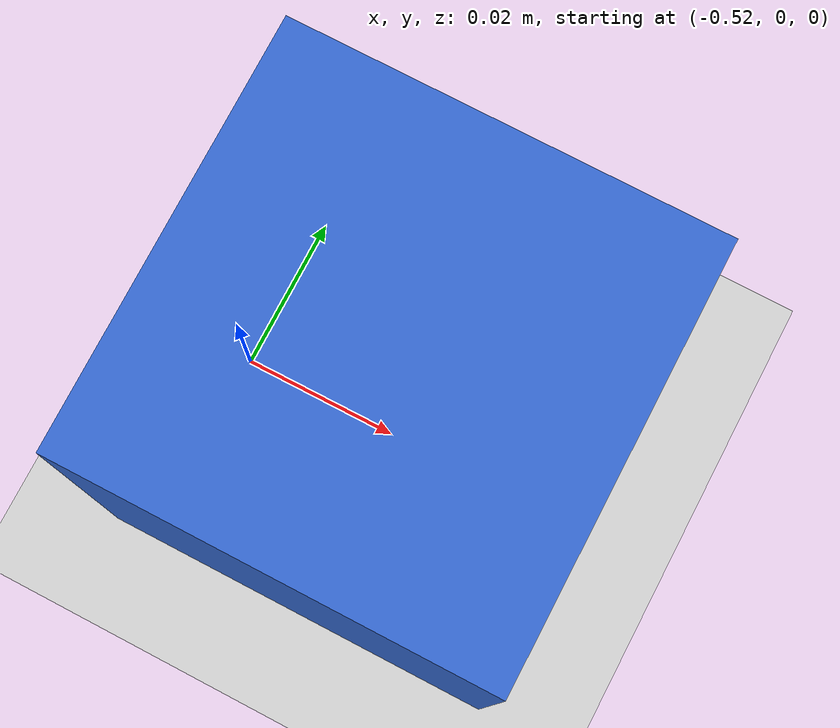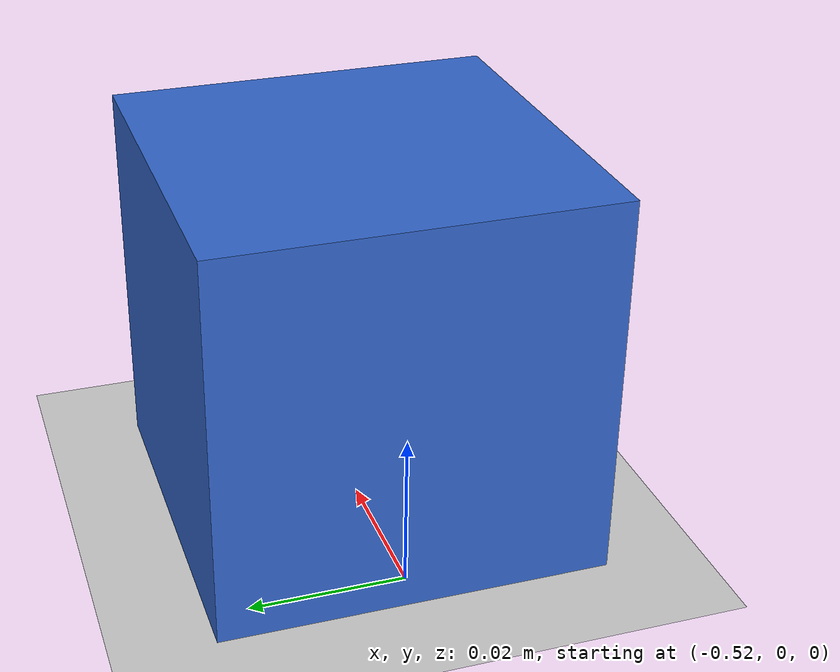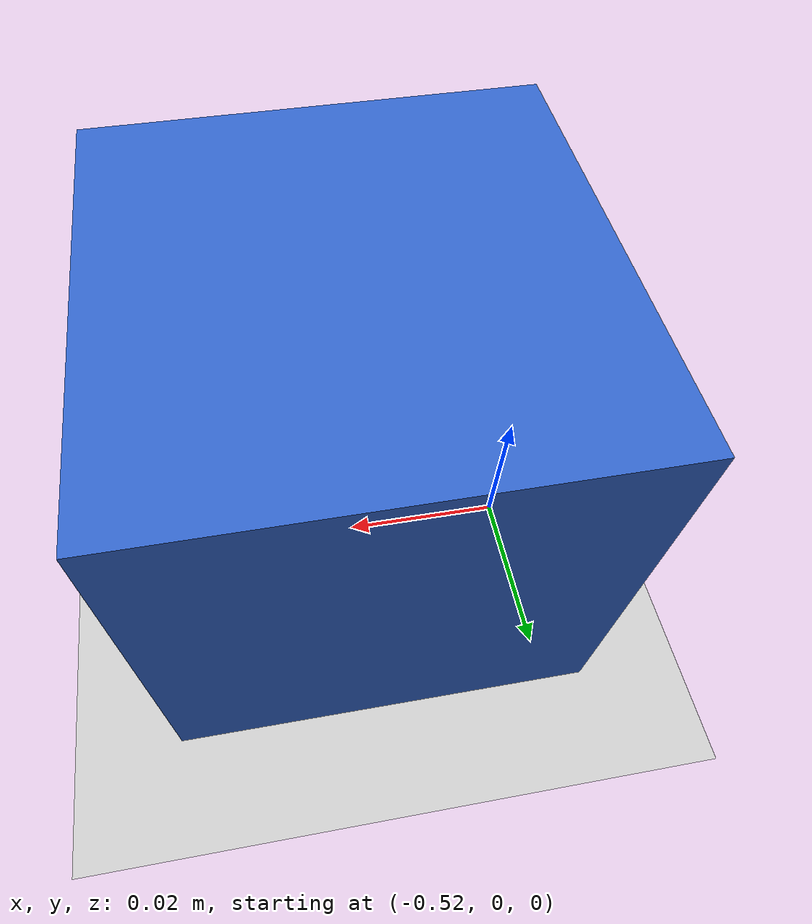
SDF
<?xml version="1.0" ?>
<sdf version="1.7">
  <world name="default">

    <model name="ground_plane">
      <static>1</static>
      <link name="link">
        <collision name="collision">
          <geometry>
            <plane>
              <normal>0 0 1</normal>
              <size>100 100</size>
            </plane>
          </geometry>
        </collision>
        <visual name="visual">
          <geometry>
            <plane>
              <normal>0 0 1</normal>
              <size>100 100</size>
            </plane>
          </geometry>
          <material>
            <ambient>0.8 0.8 0.8 1</ambient>
            <diffuse>0.8 0.8 0.8 1</diffuse>
            <specular>0.8 0.8 0.8 1</specular>
          </material>
        </visual>
      </link>
      <pose>0 0 0 0 0 0</pose>
    </model>

    <model name="pickup_cube">
      <static>false</static>
      <link name="cube_link">

        <inertial>
          <mass>0.1</mass>
          <inertia>
            <ixx>4.17e-5</ixx>
            <iyy>4.17e-5</iyy>
            <izz>4.17e-5</izz>
          </inertia>
        </inertial>

        <collision name="collision">
          <geometry>
            <box>
              <size>0.05 0.05 0.05</size>
            </box>
          </geometry>
          <surface>
            <contact>
              <ode/>
            </contact>
            <friction>
              <ode/>
            </friction>
          </surface>
        </collision>

        <visual name="visual">
          <geometry>
            <box>
              <size>0.05 0.05 0.05</size>
            </box>
          </geometry>
          <material>
            <ambient>0.2 0.4 0.8 1</ambient>
            <diffuse>0.2 0.4 0.8 1</diffuse>
          </material>
        </visual>
      </link>
      <pose>-0.5 0 0.025 0 0 0</pose>
    </model>

    <light type="directional" name="sun">
      <cast_shadows>true</cast_shadows>
      <pose>0 0 10 0 0 0</pose>
      <diffuse>0.8 0.8 0.8 1</diffuse>
      <specular>0.2 0.2 0.2 1</specular>
      <attenuation>
        <range>1000</range>
        <constant>0.9</constant>
        <linear>0.01</linear>
        <quadratic>0.001</quadratic>
      </attenuation>
      <direction>-0.5 0.1 -0.9</direction>
    </light>

    <gravity>0 0 0</gravity>

    <physics type="ode">
      <max_step_size>0.001</max_step_size>
      <real_time_factor>1</real_time_factor>
      <real_time_update_rate>1000</real_time_update_rate>
    </physics>
  </world>
</sdf>
